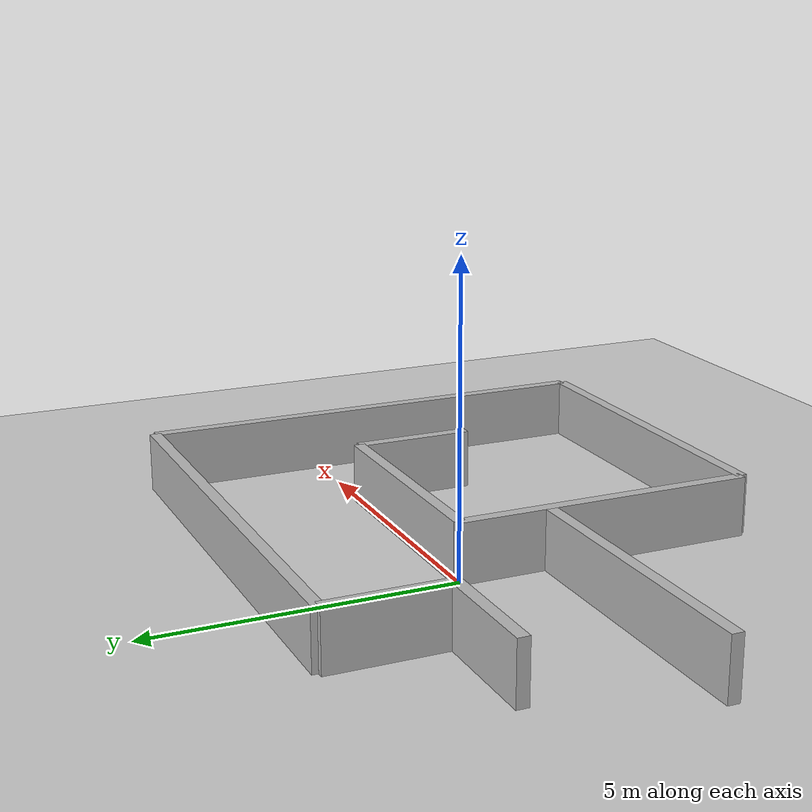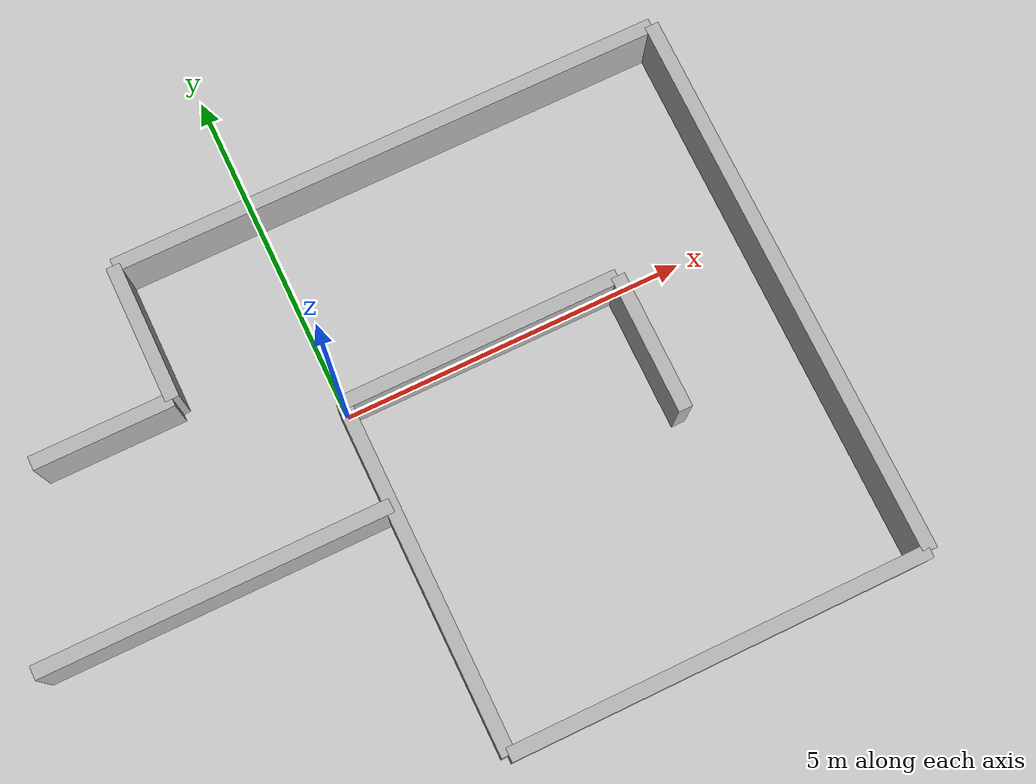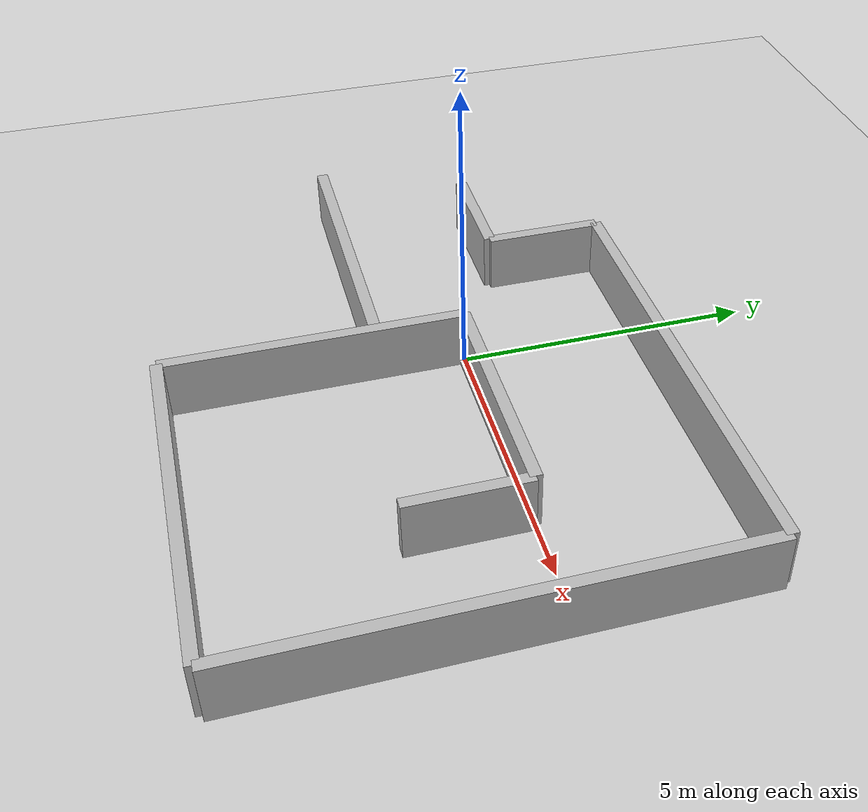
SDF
<?xml version="1.0" ?>
<sdf version="1.8">
  <world name="custom_world">

    <plugin filename="gz-sim-physics-system" name="gz::sim::systems::Physics"></plugin>
    <plugin filename="gz-sim-scene-broadcaster-system" name="gz::sim::systems::SceneBroadcaster"></plugin>
    <plugin filename="gz-sim-user-commands-system" name="gz::sim::systems::UserCommands"></plugin>

    <physics name="1ms" type="ignored">
      <max_step_size>0.001</max_step_size>
      <real_time_factor>1.0</real_time_factor>
    </physics>

    <light type="directional" name="sun">
      <cast_shadows>true</cast_shadows>
      <pose>0 0 10 0 0 0</pose>
      <diffuse>0.8 0.8 0.8 1</diffuse>
      <specular>0.2 0.2 0.2 1</specular>
      <direction>-0.5 0.1 -0.9</direction>
    </light>

    <model name="ground_plane">
      <static>true</static>
      <link name="link">
        <collision name="collision">
          <geometry><plane><normal>0 0 1</normal><size>100 100</size></plane></geometry>
        </collision>
        <visual name="visual">
          <geometry><plane><normal>0 0 1</normal><size>100 100</size></plane></geometry>
          <material>
            <ambient>0.8 0.8 0.8 1</ambient>
            <diffuse>0.8 0.8 0.8 1</diffuse>
          </material>
        </visual>
      </link>
    </model>

    <model name="outer_left_wall">
      <static>true</static>
      <pose>2 3 0.5 0 0 0</pose>
      <link name="link"><visual name="visual"><geometry><box><size>8 0.2 1</size></box></geometry></visual><collision name="collision"><geometry><box><size>8 0.2 1</size></box></geometry></collision></link>
    </model>

    <model name="outer_top_wall">
      <static>true</static>
      <pose>6 -1 0.5 0 0 0</pose>
      <link name="link"><visual name="visual"><geometry><box><size>0.2 8 1</size></box></geometry></visual><collision name="collision"><geometry><box><size>0.2 6 1</size></box></geometry></collision></link>
    </model>

    <model name="outer_right_wall">
      <static>true</static>
      <pose>3 -5 0.5 0 0 0</pose>
      <link name="link"><visual name="visual"><geometry><box><size>6 0.2 1</size></box></geometry></visual><collision name="collision"><geometry><box><size>6 0.2 1</size></box></geometry></collision></link>
    </model>

    <model name="inner_middle_horiz">
      <static>true</static>
      <pose>0 -2.5 0.5 0 0 0</pose>
      <link name="link"><visual name="visual"><geometry><box><size>0.2 5 1</size></box></geometry></visual><collision name="collision"><geometry><box><size>0.2 3 1</size></box></geometry></collision></link>
    </model>

    <model name="bottom_right_vert">
      <static>true</static>
      <pose>-2.5 -1.5 0.5 0 0 0</pose>
      <link name="link"><visual name="visual"><geometry><box><size>5 0.2 1</size></box></geometry></visual><collision name="collision"><geometry><box><size>5 0.2 1</size></box></geometry></collision></link>
    </model>

    <model name="inner_vert_left">
      <static>true</static>
      <pose>2 0 0.5 0 0 0</pose>
      <link name="link"><visual name="visual"><geometry><box><size>4 0.2 1</size></box></geometry></visual><collision name="collision"><geometry><box><size>4 0.2 1</size></box></geometry></collision></link>
    </model>

    <model name="inner_top_horiz">
      <static>true</static>
      <pose>4 -1 0.5 0 0 0</pose>
      <link name="link"><visual name="visual"><geometry><box><size>0.2 2 1</size></box></geometry></visual><collision name="collision"><geometry><box><size>0.2 2 1</size></box></geometry></collision></link>
    </model>

    <model name="bottom_left_horiz">
      <static>true</static>
      <pose>-2 2 0.5 0 0 0</pose>
      <link name="link"><visual name="visual"><geometry><box><size>0.2 2 1</size></box></geometry></visual><collision name="collision"><geometry><box><size>0.2 2 1</size></box></geometry></collision></link>
    </model>

    <model name="bottom_left_vert">
      <static>true</static>
      <pose>-3 1 0.5 0 0 0</pose>
      <link name="link"><visual name="visual"><geometry><box><size>2 0.2 1</size></box></geometry></visual><collision name="collision"><geometry><box><size>2 0.2 1</size></box></geometry></collision></link>
    </model>

  </world>
</sdf>
